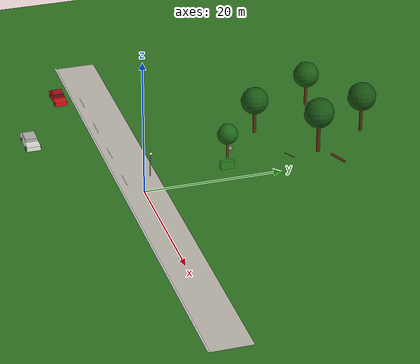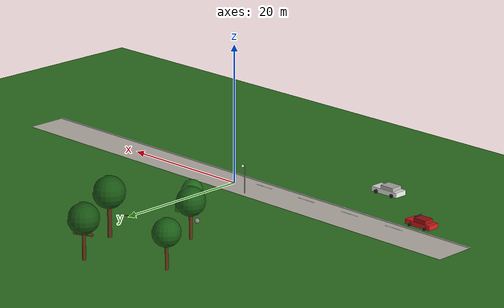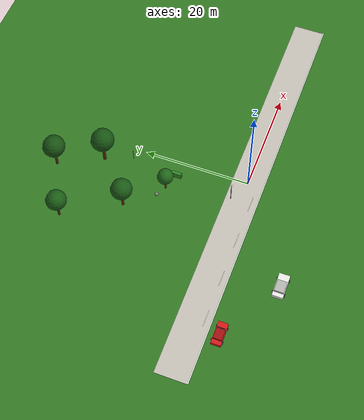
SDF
<sdf version="1.9">
 <world name="smartnav_world">
  <model name="ground_main">
   <static>true</static>
   <link name="link">
    <collision name="col">
     <geometry><plane><normal>0 0 1</normal><size>200 200</size></plane></geometry>
    </collision>
    <visual name="vis">
     <geometry><plane><normal>0 0 1</normal><size>200 200</size></plane></geometry>
     <material><ambient>0.18 0.42 0.12 1</ambient><diffuse>0.20 0.48 0.14 1</diffuse></material>
    </visual>
   </link>
  </model>
  <model name="path_surface">
   <static>true</static>
   <pose>0 0 0.01 0 0 0</pose>
   <link name="link">
    <collision name="col"><geometry><box><size>80 6 0.02</size></box></geometry></collision>
    <visual name="vis">
     <geometry><box><size>80 6 0.02</size></box></geometry>
     <material><ambient>0.74 0.72 0.68 1</ambient><diffuse>0.78 0.76 0.72 1</diffuse></material>
    </visual>
   </link>
  </model>
  <model name="curb_south">
   <static>true</static>
   <pose>0 -3 0.06 0 0 0</pose>
   <link name="link">
    <collision name="col"><geometry><box><size>80 0.2 0.12</size></box></geometry></collision>
    <visual name="vis">
     <geometry><box><size>80 0.2 0.12</size></box></geometry>
     <material><ambient>0.9 0.9 0.9 1</ambient><diffuse>0.95 0.95 0.95 1</diffuse></material>
    </visual>
   </link>
  </model>
  <model name="lane_mark_e1">
   <static>true</static>
   <pose>-28 -1.8 0.02 0 0 0</pose>
   <link name="l">
    <visual name="v">
     <geometry><box><size>3 0.12 0.01</size></box></geometry>
     <material><ambient>1 1 1 1</ambient><diffuse>1 1 1 1</diffuse></material>
    </visual>
   </link>
  </model>
  <model name="lane_mark_e2">
   <static>true</static>
   <pose>-20 -1.8 0.02 0 0 0</pose>
   <link name="l">
    <visual name="v">
     <geometry><box><size>3 0.12 0.01</size></box></geometry>
     <material><ambient>1 1 1 1</ambient><diffuse>1 1 1 1</diffuse></material>
    </visual>
   </link>
  </model>
  <model name="lane_mark_e3">
   <static>true</static>
   <pose>-12 -1.8 0.02 0 0 0</pose>
   <link name="l">
    <visual name="v">
     <geometry><box><size>3 0.12 0.01</size></box></geometry>
     <material><ambient>1 1 1 1</ambient><diffuse>1 1 1 1</diffuse></material>
    </visual>
   </link>
  </model>
  <model name="lane_mark_e4">
   <static>true</static>
   <pose>-4  -1.8 0.02 0 0 0</pose>
   <link name="l">
    <visual name="v">
     <geometry><box><size>3 0.12 0.01</size></box></geometry>
     <material><ambient>1 1 1 1</ambient><diffuse>1 1 1 1</diffuse></material>
    </visual>
   </link>
  </model>
  <model name="car_red">
   <pose>-30 -5.0 0.38 0 0 0</pose>
   <link name="chassis">
    <inertial>
     <mass>1200</mass>
     <inertia><ixx>400</ixx><ixy>0</ixy><ixz>0</ixz><iyy>1800</iyy><iyz>0</iyz><izz>1800</izz></inertia>
    </inertial>
    <visual name="body">
     <geometry><box><size>4.2 1.8 0.65</size></box></geometry>
     <material><ambient>0.82 0.08 0.08 1</ambient><diffuse>0.85 0.10 0.10 1</diffuse></material>
    </visual>
    <visual name="cabin">
     <pose>-0.3 0 0.55 0 0 0</pose>
     <geometry><box><size>2.0 1.55 0.50</size></box></geometry>
     <material><ambient>0.60 0.05 0.05 1</ambient><diffuse>0.65 0.07 0.07 1</diffuse></material>
    </visual>
    <visual name="windshield">
     <pose>0.7 0 0.78 0 0.3 0</pose>
     <geometry><box><size>0.08 1.4 0.40</size></box></geometry>
     <material><ambient>0.1 0.1 0.2 0.7</ambient><diffuse>0.1 0.1 0.2 0.7</diffuse></material>
    </visual>
    <visual name="wfl">
     <pose>1.3  0.95 -0.22 1.5708 0 0</pose>
     <geometry><cylinder><radius>0.28</radius><length>0.20</length></cylinder></geometry>
     <material><ambient>0.08 0.08 0.08 1</ambient><diffuse>0.12 0.12 0.12 1</diffuse></material>
    </visual>
    <visual name="wfr">
     <pose>1.3 -0.95 -0.22 1.5708 0 0</pose>
     <geometry><cylinder><radius>0.28</radius><length>0.20</length></cylinder></geometry>
     <material><ambient>0.08 0.08 0.08 1</ambient><diffuse>0.12 0.12 0.12 1</diffuse></material>
    </visual>
    <visual name="wrl">
     <pose>-1.3  0.95 -0.22 1.5708 0 0</pose>
     <geometry><cylinder><radius>0.28</radius><length>0.20</length></cylinder></geometry>
     <material><ambient>0.08 0.08 0.08 1</ambient><diffuse>0.12 0.12 0.12 1</diffuse></material>
    </visual>
    <visual name="wrr">
     <pose>-1.3 -0.95 -0.22 1.5708 0 0</pose>
     <geometry><cylinder><radius>0.28</radius><length>0.20</length></cylinder></geometry>
     <material><ambient>0.08 0.08 0.08 1</ambient><diffuse>0.12 0.12 0.12 1</diffuse></material>
    </visual>
    <collision name="col"><geometry><box><size>4.2 1.8 1.05</size></box></geometry></collision>
   </link>
   <plugin filename="gz-sim-velocity-control-system" name="gz::sim::systems::VelocityControl">
    <initial_linear>7.0 0 0</initial_linear>
    <initial_angular>0 0 0</initial_angular>
    <topic>/car_red_cmd_vel</topic>
   </plugin>
  </model>
  <model name="car_white">
   <pose>-18 -12 0.38 0 0 0</pose>
   <link name="chassis">
    <inertial>
     <mass>1300</mass>
     <inertia><ixx>450</ixx><ixy>0</ixy><ixz>0</ixz><iyy>1900</iyy><iyz>0</iyz><izz>1900</izz></inertia>
    </inertial>
    <visual name="body">
     <geometry><box><size>4.5 2.0 0.70</size></box></geometry>
     <material><ambient>0.90 0.90 0.88 1</ambient><diffuse>0.93 0.93 0.91 1</diffuse></material>
    </visual>
    <visual name="cabin">
     <pose>-0.4 0 0.58 0 0 0</pose>
     <geometry><box><size>2.2 1.75 0.52</size></box></geometry>
     <material><ambient>0.70 0.70 0.68 1</ambient><diffuse>0.72 0.72 0.70 1</diffuse></material>
    </visual>
    <visual name="wfl">
     <pose>1.4  1.05 -0.22 1.5708 0 0</pose>
     <geometry><cylinder><radius>0.30</radius><length>0.22</length></cylinder></geometry>
     <material><ambient>0.08 0.08 0.08 1</ambient><diffuse>0.12 0.12 0.12 1</diffuse></material>
    </visual>
    <visual name="wfr">
     <pose>1.4 -1.05 -0.22 1.5708 0 0</pose>
     <geometry><cylinder><radius>0.30</radius><length>0.22</length></cylinder></geometry>
     <material><ambient>0.08 0.08 0.08 1</ambient><diffuse>0.12 0.12 0.12 1</diffuse></material>
    </visual>
    <visual name="wrl">
     <pose>-1.4  1.05 -0.22 1.5708 0 0</pose>
     <geometry><cylinder><radius>0.30</radius><length>0.22</length></cylinder></geometry>
     <material><ambient>0.08 0.08 0.08 1</ambient><diffuse>0.12 0.12 0.12 1</diffuse></material>
    </visual>
    <visual name="wrr">
     <pose>-1.4 -1.05 -0.22 1.5708 0 0</pose>
     <geometry><cylinder><radius>0.30</radius><length>0.22</length></cylinder></geometry>
     <material><ambient>0.08 0.08 0.08 1</ambient><diffuse>0.12 0.12 0.12 1</diffuse></material>
    </visual>
    <collision name="col"><geometry><box><size>4.5 2.0 1.10</size></box></geometry></collision>
   </link>
   <plugin filename="gz-sim-velocity-control-system" name="gz::sim::systems::VelocityControl">
    <initial_linear>5.0 0 0</initial_linear>
    <initial_angular>0 0 0</initial_angular>
    <topic>/car_white_cmd_vel</topic>
   </plugin>
  </model>
  <model name="lamp_post">
   <static>true</static>
   <pose>-4 2 0 0 0 0</pose>
   <link name="pole">
    <collision name="col">
     <geometry><cylinder><radius>0.07</radius><length>4.0</length></cylinder></geometry>
    </collision>
    <visual name="vis">
     <pose>0 0 2.0 0 0 0</pose>
     <geometry><cylinder><radius>0.07</radius><length>4.0</length></cylinder></geometry>
     <material><ambient>0.55 0.55 0.55 1</ambient><diffuse>0.60 0.60 0.60 1</diffuse></material>
    </visual>
    <visual name="lamp">
     <pose>0.4 0 3.8 0 0 0</pose>
     <geometry><sphere><radius>0.18</radius></sphere></geometry>
     <material><ambient>1.0 1.0 0.85 1</ambient><diffuse>1.0 1.0 0.85 1</diffuse></material>
    </visual>
   </link>
  </model>
  <model name="tree_01">
   <static>true</static>
   <pose>-6 14 0 0 0 0</pose>
   <link name="trunk">
    <collision name="col">
     <geometry><cylinder><radius>0.20</radius><length>3.0</length></cylinder></geometry>
    </collision>
    <visual name="v">
     <pose>0 0 1.5 0 0 0</pose>
     <geometry><cylinder><radius>0.20</radius><length>3.0</length></cylinder></geometry>
     <material><ambient>0.35 0.18 0.06 1</ambient><diffuse>0.40 0.22 0.08 1</diffuse></material>
    </visual>
    <visual name="c">
     <pose>0 0 3.8 0 0 0</pose>
     <geometry><sphere><radius>1.5</radius></sphere></geometry>
     <material><ambient>0.10 0.35 0.08 1</ambient><diffuse>0.12 0.40 0.10 1</diffuse></material>
    </visual>
   </link>
  </model>
  <model name="tree_03">
   <static>true</static>
   <pose>-12 20 0 0 0 0</pose>
   <link name="trunk">
    <collision name="col">
     <geometry><cylinder><radius>0.25</radius><length>4.0</length></cylinder></geometry>
    </collision>
    <visual name="v">
     <pose>0 0 2.0 0 0 0</pose>
     <geometry><cylinder><radius>0.25</radius><length>4.0</length></cylinder></geometry>
     <material><ambient>0.30 0.15 0.05 1</ambient><diffuse>0.36 0.18 0.06 1</diffuse></material>
    </visual>
    <visual name="c">
     <pose>0 0 5.2 0 0 0</pose>
     <geometry><sphere><radius>2.0</radius></sphere></geometry>
     <material><ambient>0.08 0.30 0.06 1</ambient><diffuse>0.10 0.35 0.08 1</diffuse></material>
    </visual>
   </link>
  </model>
  <model name="tree_05">
   <static>true</static>
   <pose>-4 27 0 0 0 0</pose>
   <link name="trunk">
    <collision name="col">
     <geometry><cylinder><radius>0.28</radius><length>5.0</length></cylinder></geometry>
    </collision>
    <visual name="v">
     <pose>0 0 2.5 0 0 0</pose>
     <geometry><cylinder><radius>0.28</radius><length>5.0</length></cylinder></geometry>
     <material><ambient>0.28 0.14 0.04 1</ambient><diffuse>0.34 0.17 0.06 1</diffuse></material>
    </visual>
    <visual name="c">
     <pose>0 0 6.2 0 0 0</pose>
     <geometry><sphere><radius>2.2</radius></sphere></geometry>
     <material><ambient>0.07 0.28 0.05 1</ambient><diffuse>0.09 0.33 0.07 1</diffuse></material>
    </visual>
   </link>
  </model>
  <model name="tree_07">
   <static>true</static>
   <pose>-18 30 0 0 0 0</pose>
   <link name="trunk">
    <collision name="col">
     <geometry><cylinder><radius>0.22</radius><length>4.0</length></cylinder></geometry>
    </collision>
    <visual name="v">
     <pose>0 0 2.0 0 0 0</pose>
     <geometry><cylinder><radius>0.22</radius><length>4.0</length></cylinder></geometry>
     <material><ambient>0.30 0.15 0.05 1</ambient><diffuse>0.36 0.18 0.06 1</diffuse></material>
    </visual>
    <visual name="c">
     <pose>0 0 5.0 0 0 0</pose>
     <geometry><sphere><radius>1.9</radius></sphere></geometry>
     <material><ambient>0.08 0.30 0.06 1</ambient><diffuse>0.10 0.36 0.08 1</diffuse></material>
    </visual>
   </link>
  </model>
  <model name="tree_09">
   <static>true</static>
   <pose>-8 35 0 0 0 0</pose>
   <link name="trunk">
    <collision name="col">
     <geometry><cylinder><radius>0.24</radius><length>4.5</length></cylinder></geometry>
    </collision>
    <visual name="v">
     <pose>0 0 2.25 0 0 0</pose>
     <geometry><cylinder><radius>0.24</radius><length>4.5</length></cylinder></geometry>
     <material><ambient>0.29 0.14 0.04 1</ambient><diffuse>0.34 0.17 0.05 1</diffuse></material>
    </visual>
    <visual name="c">
     <pose>0 0 5.6 0 0 0</pose>
     <geometry><sphere><radius>2.1</radius></sphere></geometry>
     <material><ambient>0.07 0.27 0.05 1</ambient><diffuse>0.09 0.32 0.07 1</diffuse></material>
    </visual>
   </link>
  </model>
  <model name="branch_low_2">
   <static>true</static>
   <pose>-2 22 1.2 0 1.5708 0.5</pose>
   <link name="link">
    <collision name="col">
     <geometry><cylinder><radius>0.04</radius><length>1.8</length></cylinder></geometry>
    </collision>
    <visual name="vis">
     <geometry><cylinder><radius>0.04</radius><length>1.8</length></cylinder></geometry>
     <material><ambient>0.36 0.18 0.06 1</ambient><diffuse>0.40 0.21 0.08 1</diffuse></material>
    </visual>
   </link>
  </model>
  <model name="rock_1">
   <static>true</static>
   <pose>-8 15 0.2 0 0 0</pose>
   <link name="link">
    <collision name="col"><geometry><sphere><radius>0.35</radius></sphere></geometry></collision>
    <visual name="vis">
     <geometry><sphere><radius>0.35</radius></sphere></geometry>
     <material><ambient>0.50 0.48 0.45 1</ambient><diffuse>0.55 0.53 0.50 1</diffuse></material>
    </visual>
   </link>
  </model>
  <model name="fallen_log">
   <static>true</static>
   <pose>-1 29 0.15 0 1.5708 0.4</pose>
   <link name="link">
    <collision name="col">
     <geometry><cylinder><radius>0.18</radius><length>2.8</length></cylinder></geometry>
    </collision>
    <visual name="vis">
     <geometry><cylinder><radius>0.18</radius><length>2.8</length></cylinder></geometry>
     <material><ambient>0.35 0.18 0.06 1</ambient><diffuse>0.40 0.22 0.08 1</diffuse></material>
    </visual>
   </link>
  </model>
  <model name="hedge_1">
   <static>true</static>
   <pose>-3 13 0.6 0 0 0</pose>
   <link name="link">
    <collision name="col"><geometry><box><size>0.6 2.0 1.2</size></box></geometry></collision>
    <visual name="vis">
     <geometry><box><size>0.6 2.0 1.2</size></box></geometry>
     <material><ambient>0.15 0.48 0.12 1</ambient><diffuse>0.18 0.52 0.14 1</diffuse></material>
    </visual>
   </link>
  </model>
 </world>
</sdf>
